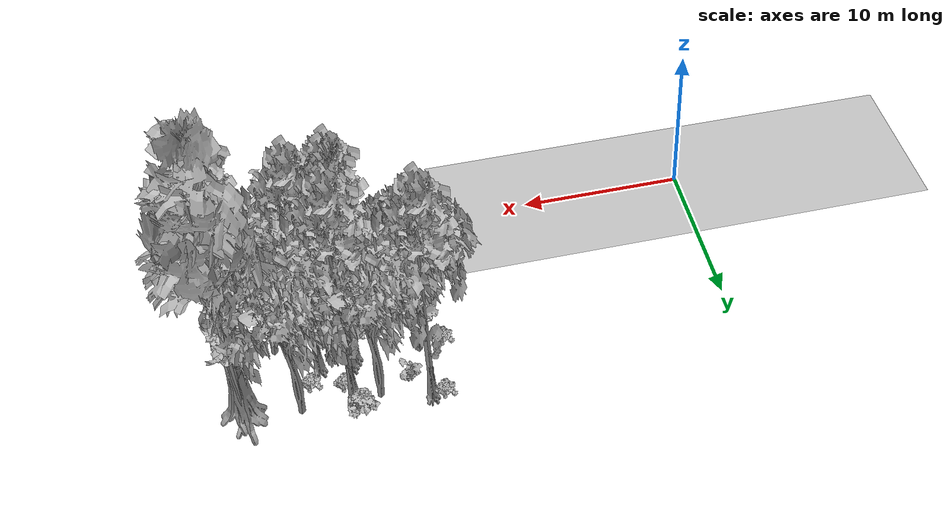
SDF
<sdf version="1.7">
 <world name="default">
  <model name="ground_plane">
   <static>1</static>
   <link name="link">
    <collision name="collision">
     <geometry><plane><normal>0 0 1</normal><size>100 100</size></plane></geometry>
     <surface><contact><ode><min_depth>0.01</min_depth><max_vel>0</max_vel></ode></contact></surface>
    </collision>
    <visual name="grass">
     <cast_shadows>0</cast_shadows>
     <geometry>
      <mesh>
       <scale>0.5814285714285714 0.18142857142857144 0.1</scale>
       <uri>file://grass_plane/meshes/grass_plane.dae</uri>
      </mesh>
     </geometry>
    </visual>
   </link>
  </model>
  <model name="Tree 45">
   <static>1</static>
   <pose>24.23893698248945 8.56572072599159 0 1.57079 -0 0</pose>
   <link name="link">
    <collision name="collision">
     <geometry><mesh><scale>3.5 5 3.5</scale><uri>model://tree_2/meshes/tree_2.obj</uri></mesh></geometry>
    </collision>
    <visual name="visual">
     <geometry><mesh><scale>3.5 5 3.5</scale><uri>model://tree_2/meshes/tree_2.obj</uri></mesh></geometry>
    </visual>
   </link>
  </model>
  <model name="Tree 64">
   <static>1</static>
   <pose>24.345613205761396 10.138545675893194 0 1.57079 -0 0</pose>
   <link name="link">
    <collision name="collision">
     <geometry><mesh><scale>3.5 5 3.5</scale><uri>model://tree_9/meshes/tree_9.obj</uri></mesh></geometry>
    </collision>
    <visual name="visual">
     <geometry><mesh><scale>3.5 5 3.5</scale><uri>model://tree_9/meshes/tree_9.obj</uri></mesh></geometry>
    </visual>
   </link>
  </model>
  <model name="Tree 88">
   <static>1</static>
   <pose>18.42991473800069 10.10808167950129 0 1.57079 -0 0</pose>
   <link name="link">
    <collision name="collision">
     <geometry><mesh><scale>3.5 5 3.5</scale><uri>model://tree_2/meshes/tree_2.obj</uri></mesh></geometry>
    </collision>
    <visual name="visual">
     <geometry><mesh><scale>3.5 5 3.5</scale><uri>model://tree_2/meshes/tree_2.obj</uri></mesh></geometry>
    </visual>
   </link>
  </model>
  <model name="Tree 123">
   <static>1</static>
   <pose>22.554541203289546 10.356087986821965 0 1.57079 -0 0</pose>
   <link name="link">
    <collision name="collision">
     <geometry><mesh><scale>3.5 5 3.5</scale><uri>model://tree_9/meshes/tree_9.obj</uri></mesh></geometry>
    </collision>
    <visual name="visual">
     <geometry><mesh><scale>3.5 5 3.5</scale><uri>model://tree_9/meshes/tree_9.obj</uri></mesh></geometry>
    </visual>
   </link>
  </model>
  <model name="Tree 149">
   <static>1</static>
   <pose>28.637278393258754 12.7372767834423 0 1.57079 -0 0</pose>
   <link name="link">
    <collision name="collision">
     <geometry><mesh><scale>3.5 5 3.5</scale><uri>model://tree_4/meshes/tree_4.obj</uri></mesh></geometry>
    </collision>
    <visual name="visual">
     <geometry><mesh><scale>3.5 5 3.5</scale><uri>model://tree_4/meshes/tree_4.obj</uri></mesh></geometry>
    </visual>
   </link>
  </model>
  <model name="Tree 186">
   <static>1</static>
   <pose>18.34464614294265 13.589524324318742 0 1.57079 -0 0</pose>
   <link name="link">
    <collision name="collision">
     <geometry><mesh><scale>3.5 5 3.5</scale><uri>model://tree_9/meshes/tree_9.obj</uri></mesh></geometry>
    </collision>
    <visual name="visual">
     <geometry><mesh><scale>3.5 5 3.5</scale><uri>model://tree_9/meshes/tree_9.obj</uri></mesh></geometry>
    </visual>
   </link>
  </model>
  <model name="Tree 198">
   <static>1</static>
   <pose>22.688030028970744 12.542582941668186 0 1.57079 -0 0</pose>
   <link name="link">
    <collision name="collision">
     <geometry><mesh><scale>3.5 5 3.5</scale><uri>model://tree_9/meshes/tree_9.obj</uri></mesh></geometry>
    </collision>
    <visual name="visual">
     <geometry><mesh><scale>3.5 5 3.5</scale><uri>model://tree_9/meshes/tree_9.obj</uri></mesh></geometry>
    </visual>
   </link>
  </model>
  <model name="Tree 263">
   <static>1</static>
   <pose>26.634852448301146 8.343077019628122 0 1.57079 -0 0</pose>
   <link name="link">
    <collision name="collision">
     <geometry><mesh><scale>3.5 5 3.5</scale><uri>model://tree_2/meshes/tree_2.obj</uri></mesh></geometry>
    </collision>
    <visual name="visual">
     <geometry><mesh><scale>3.5 5 3.5</scale><uri>model://tree_2/meshes/tree_2.obj</uri></mesh></geometry>
    </visual>
   </link>
  </model>
  <model name="Tree 338">
   <static>1</static>
   <pose>22.256278193046484 9.79599574044375 0 1.57079 -0 0</pose>
   <link name="link">
    <collision name="collision">
     <geometry><mesh><scale>3.5 5 3.5</scale><uri>model://tree_9/meshes/tree_9.obj</uri></mesh></geometry>
    </collision>
    <visual name="visual">
     <geometry><mesh><scale>3.5 5 3.5</scale><uri>model://tree_9/meshes/tree_9.obj</uri></mesh></geometry>
    </visual>
   </link>
  </model>
  <model name="Tree 422">
   <static>1</static>
   <pose>28.715704072766513 8.053900355607208 0 1.57079 -0 0</pose>
   <link name="link">
    <collision name="collision">
     <geometry><mesh><scale>3.5 5 3.5</scale><uri>model://tree_9/meshes/tree_9.obj</uri></mesh></geometry>
    </collision>
    <visual name="visual">
     <geometry><mesh><scale>3.5 5 3.5</scale><uri>model://tree_9/meshes/tree_9.obj</uri></mesh></geometry>
    </visual>
   </link>
  </model>
  <model name="Tree 423">
   <static>1</static>
   <pose>25.551906601740683 12.984158458958571 0 1.57079 -0 0</pose>
   <link name="link">
    <collision name="collision">
     <geometry><mesh><scale>3.5 5 3.5</scale><uri>model://tree_2/meshes/tree_2.obj</uri></mesh></geometry>
    </collision>
    <visual name="visual">
     <geometry><mesh><scale>3.5 5 3.5</scale><uri>model://tree_2/meshes/tree_2.obj</uri></mesh></geometry>
    </visual>
   </link>
  </model>
  <model name="Tree 440">
   <static>1</static>
   <pose>21.08850307609265 12.887214409863745 0 1.57079 -0 0</pose>
   <link name="link">
    <collision name="collision">
     <geometry><mesh><scale>3.5 5 3.5</scale><uri>model://tree_2/meshes/tree_2.obj</uri></mesh></geometry>
    </collision>
    <visual name="visual">
     <geometry><mesh><scale>3.5 5 3.5</scale><uri>model://tree_2/meshes/tree_2.obj</uri></mesh></geometry>
    </visual>
   </link>
  </model>
  <model name="Bush 25">
   <static>1</static>
   <pose>22.334371294708276 13.79742207793538 0 1.57079 -0 0</pose>
   <link name="link">
    <collision name="collision">
     <geometry><mesh><scale>2 2 2</scale><uri>model://bush_1/meshes/bush_1.obj</uri></mesh></geometry>
     <surface><contact><collide_without_contact>false</collide_without_contact></contact></surface>
    </collision>
    <visual name="visual">
     <geometry><mesh><scale>2 2 2</scale><uri>model://bush_1/meshes/bush_1.obj</uri></mesh></geometry>
    </visual>
   </link>
  </model>
  <model name="Bush 40">
   <static>1</static>
   <pose>17.667976445372688 13.716565008299966 0 1.57079 -0 0</pose>
   <link name="link">
    <collision name="collision">
     <geometry><mesh><scale>2 2 2</scale><uri>model://bush_3/meshes/bush_3.obj</uri></mesh></geometry>
     <surface><contact><collide_without_contact>false</collide_without_contact></contact></surface>
    </collision>
    <visual name="visual">
     <geometry><mesh><scale>2 2 2</scale><uri>model://bush_3/meshes/bush_3.obj</uri></mesh></geometry>
    </visual>
   </link>
  </model>
  <model name="Bush 98">
   <static>1</static>
   <pose>22.23721098308421 13.584459935486947 0 1.57079 -0 0</pose>
   <link name="link">
    <collision name="collision">
     <geometry><mesh><scale>2 2 2</scale><uri>model://bush_3/meshes/bush_3.obj</uri></mesh></geometry>
     <surface><contact><collide_without_contact>false</collide_without_contact></contact></surface>
    </collision>
    <visual name="visual">
     <geometry><mesh><scale>2 2 2</scale><uri>model://bush_3/meshes/bush_3.obj</uri></mesh></geometry>
    </visual>
   </link>
  </model>
  <model name="Bush 103">
   <static>1</static>
   <pose>23.138111535024606 11.934324626133762 0 1.57079 -0 0</pose>
   <link name="link">
    <collision name="collision">
     <geometry><mesh><scale>2 2 2</scale><uri>model://bush_3/meshes/bush_3.obj</uri></mesh></geometry>
     <surface><contact><collide_without_contact>false</collide_without_contact></contact></surface>
    </collision>
    <visual name="visual">
     <geometry><mesh><scale>2 2 2</scale><uri>model://bush_3/meshes/bush_3.obj</uri></mesh></geometry>
    </visual>
   </link>
  </model>
  <model name="Bush 104">
   <static>1</static>
   <pose>19.504658379850042 12.354021811452817 0 1.57079 -0 0</pose>
   <link name="link">
    <collision name="collision">
     <geometry><mesh><scale>2 2 2</scale><uri>model://bush_0/meshes/bush_0.obj</uri></mesh></geometry>
     <surface><contact><collide_without_contact>false</collide_without_contact></contact></surface>
    </collision>
    <visual name="visual">
     <geometry><mesh><scale>2 2 2</scale><uri>model://bush_0/meshes/bush_0.obj</uri></mesh></geometry>
    </visual>
   </link>
  </model>
  <model name="Bush 111">
   <static>1</static>
   <pose>25.016045605341333 11.483608590268204 0 1.57079 -0 0</pose>
   <link name="link">
    <collision name="collision">
     <geometry><mesh><scale>2 2 2</scale><uri>model://bush_3/meshes/bush_3.obj</uri></mesh></geometry>
     <surface><contact><collide_without_contact>false</collide_without_contact></contact></surface>
    </collision>
    <visual name="visual">
     <geometry><mesh><scale>2 2 2</scale><uri>model://bush_3/meshes/bush_3.obj</uri></mesh></geometry>
    </visual>
   </link>
  </model>
  <model name="Bush 263">
   <static>1</static>
   <pose>21.850587177984792 8.110056303648001 0 1.57079 -0 0</pose>
   <link name="link">
    <collision name="collision">
     <geometry><mesh><scale>2 2 2</scale><uri>model://bush_2/meshes/bush_2.obj</uri></mesh></geometry>
     <surface><contact><collide_without_contact>false</collide_without_contact></contact></surface>
    </collision>
    <visual name="visual">
     <geometry><mesh><scale>2 2 2</scale><uri>model://bush_2/meshes/bush_2.obj</uri></mesh></geometry>
    </visual>
   </link>
  </model>
  <model name="Bush 272">
   <static>1</static>
   <pose>20.607668346363724 8.249007497716342 0 1.57079 -0 0</pose>
   <link name="link">
    <collision name="collision">
     <geometry><mesh><scale>2 2 2</scale><uri>model://bush_3/meshes/bush_3.obj</uri></mesh></geometry>
     <surface><contact><collide_without_contact>false</collide_without_contact></contact></surface>
    </collision>
    <visual name="visual">
     <geometry><mesh><scale>2 2 2</scale><uri>model://bush_3/meshes/bush_3.obj</uri></mesh></geometry>
    </visual>
   </link>
  </model>
  <model name="Bush 299">
   <static>1</static>
   <pose>23.652593408915607 7.313684973651839 0 1.57079 -0 0</pose>
   <link name="link">
    <collision name="collision">
     <geometry><mesh><scale>2 2 2</scale><uri>model://bush_4/meshes/bush_4.obj</uri></mesh></geometry>
     <surface><contact><collide_without_contact>false</collide_without_contact></contact></surface>
    </collision>
    <visual name="visual">
     <geometry><mesh><scale>2 2 2</scale><uri>model://bush_4/meshes/bush_4.obj</uri></mesh></geometry>
    </visual>
   </link>
  </model>
  <model name="Bush 306">
   <static>1</static>
   <pose>17.145761609160004 9.862525630194693 0 1.57079 -0 0</pose>
   <link name="link">
    <collision name="collision">
     <geometry><mesh><scale>2 2 2</scale><uri>model://bush_3/meshes/bush_3.obj</uri></mesh></geometry>
     <surface><contact><collide_without_contact>false</collide_without_contact></contact></surface>
    </collision>
    <visual name="visual">
     <geometry><mesh><scale>2 2 2</scale><uri>model://bush_3/meshes/bush_3.obj</uri></mesh></geometry>
    </visual>
   </link>
  </model>
 </world>
</sdf>
